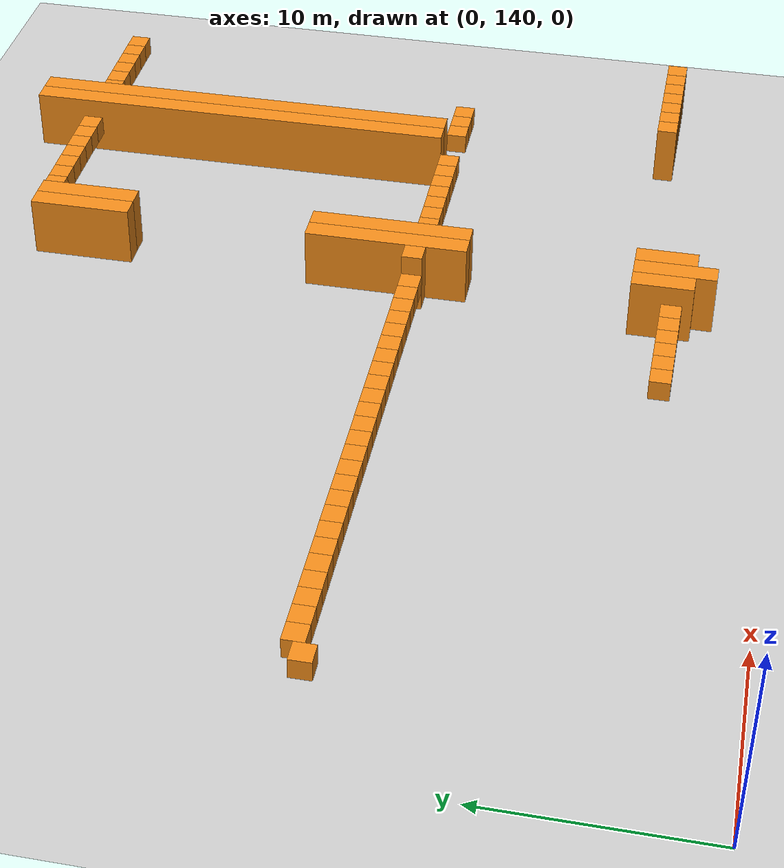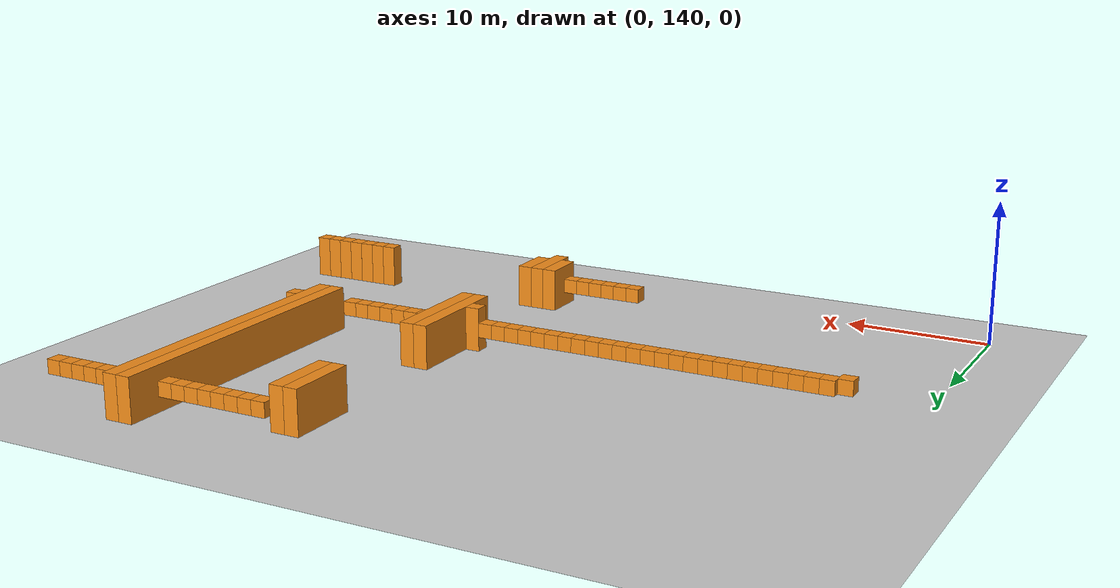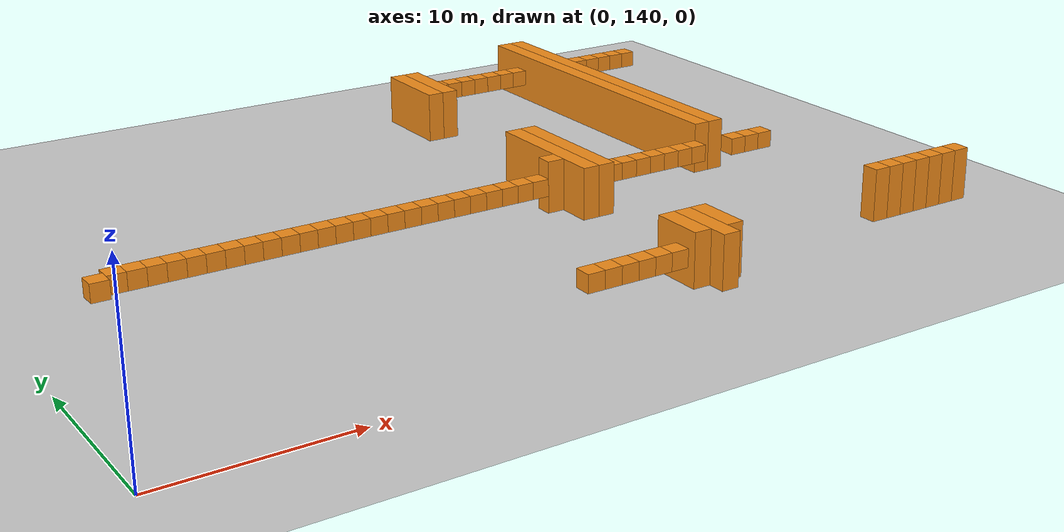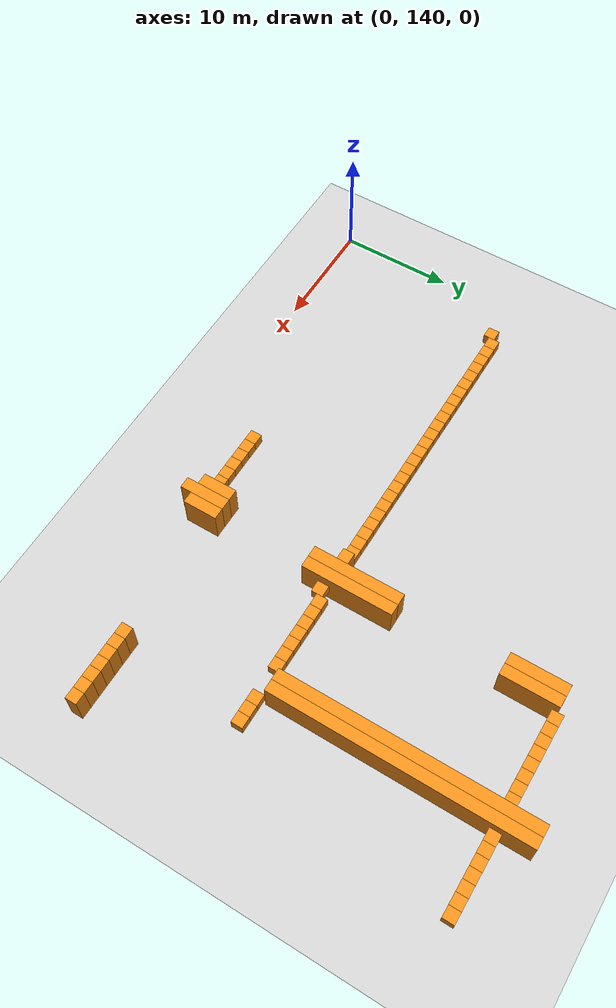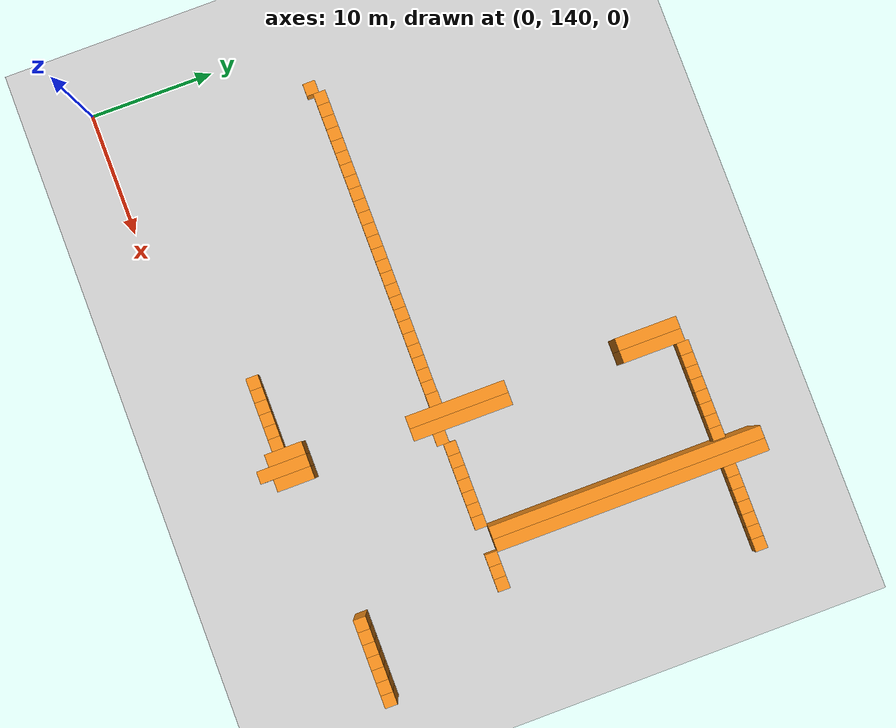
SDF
<sdf version="1.6">
 <world name="default">
  <include><uri>model://ground_plane</uri></include>
  <model name="unit_box_013">
   <pose>4.50   157.00     1.50 0 0 0</pose>
   <static>1</static>
   <link name="link">
    <inertial>
     <mass>5000</mass>
     <inertia><ixx>200</ixx><ixy>0</ixy><ixz>0</ixz><iyy>200</iyy><iyz>0</iyz><izz>200</izz></inertia>
    </inertial>
    <collision name="collision"><geometry><box><size>1 1 1</size></box></geometry></collision>
    <visual name="visual">
     <geometry><box><size>1 1 1</size></box></geometry>
     <material>
      <script><name>Gazebo/Orange</name><uri>file://media/materials/scripts/gazebo.material</uri></script>
     </material>
    </visual>
   </link>
  </model>
  <model name="unit_box_026">
   <pose>5.50   157.50     1.50 0 0 0</pose>
   <static>1</static>
   <link name="link">
    <inertial>
     <mass>5000</mass>
     <inertia><ixx>200</ixx><ixy>0</ixy><ixz>0</ixz><iyy>200</iyy><iyz>0</iyz><izz>200</izz></inertia>
    </inertial>
    <collision name="collision"><geometry><box><size>1 1 1</size></box></geometry></collision>
    <visual name="visual">
     <geometry><box><size>1 1 1</size></box></geometry>
     <material>
      <script><name>Gazebo/Orange</name><uri>file://media/materials/scripts/gazebo.material</uri></script>
     </material>
    </visual>
   </link>
  </model>
  <model name="unit_box_039">
   <pose>6.50   157.50     1.50 0 0 0</pose>
   <static>1</static>
   <link name="link">
    <inertial>
     <mass>5000</mass>
     <inertia><ixx>200</ixx><ixy>0</ixy><ixz>0</ixz><iyy>200</iyy><iyz>0</iyz><izz>200</izz></inertia>
    </inertial>
    <collision name="collision"><geometry><box><size>1 1 1</size></box></geometry></collision>
    <visual name="visual">
     <geometry><box><size>1 1 1</size></box></geometry>
     <material>
      <script><name>Gazebo/Orange</name><uri>file://media/materials/scripts/gazebo.material</uri></script>
     </material>
    </visual>
   </link>
  </model>
  <model name="unit_box_052">
   <pose>7.50   157.50     1.50 0 0 0</pose>
   <static>1</static>
   <link name="link">
    <inertial>
     <mass>5000</mass>
     <inertia><ixx>200</ixx><ixy>0</ixy><ixz>0</ixz><iyy>200</iyy><iyz>0</iyz><izz>200</izz></inertia>
    </inertial>
    <collision name="collision"><geometry><box><size>1 1 1</size></box></geometry></collision>
    <visual name="visual">
     <geometry><box><size>1 1 1</size></box></geometry>
     <material>
      <script><name>Gazebo/Orange</name><uri>file://media/materials/scripts/gazebo.material</uri></script>
     </material>
    </visual>
   </link>
  </model>
  <model name="unit_box_065">
   <pose>8.50   157.50     1.50 0 0 0</pose>
   <static>1</static>
   <link name="link">
    <inertial>
     <mass>5000</mass>
     <inertia><ixx>200</ixx><ixy>0</ixy><ixz>0</ixz><iyy>200</iyy><iyz>0</iyz><izz>200</izz></inertia>
    </inertial>
    <collision name="collision"><geometry><box><size>1 1 1</size></box></geometry></collision>
    <visual name="visual">
     <geometry><box><size>1 1 1</size></box></geometry>
     <material>
      <script><name>Gazebo/Orange</name><uri>file://media/materials/scripts/gazebo.material</uri></script>
     </material>
    </visual>
   </link>
  </model>
  <model name="unit_box_078">
   <pose>9.50   157.50     1.50 0 0 0</pose>
   <static>1</static>
   <link name="link">
    <inertial>
     <mass>5000</mass>
     <inertia><ixx>200</ixx><ixy>0</ixy><ixz>0</ixz><iyy>200</iyy><iyz>0</iyz><izz>200</izz></inertia>
    </inertial>
    <collision name="collision"><geometry><box><size>1 1 1</size></box></geometry></collision>
    <visual name="visual">
     <geometry><box><size>1 1 1</size></box></geometry>
     <material>
      <script><name>Gazebo/Orange</name><uri>file://media/materials/scripts/gazebo.material</uri></script>
     </material>
    </visual>
   </link>
  </model>
  <model name="unit_box_091">
   <pose>10.50   157.50     1.50 0 0 0</pose>
   <static>1</static>
   <link name="link">
    <inertial>
     <mass>5000</mass>
     <inertia><ixx>200</ixx><ixy>0</ixy><ixz>0</ixz><iyy>200</iyy><iyz>0</iyz><izz>200</izz></inertia>
    </inertial>
    <collision name="collision"><geometry><box><size>1 1 1</size></box></geometry></collision>
    <visual name="visual">
     <geometry><box><size>1 1 1</size></box></geometry>
     <material>
      <script><name>Gazebo/Orange</name><uri>file://media/materials/scripts/gazebo.material</uri></script>
     </material>
    </visual>
   </link>
  </model>
  <model name="unit_box_104">
   <pose>11.50   157.50     1.50 0 0 0</pose>
   <static>1</static>
   <link name="link">
    <inertial>
     <mass>5000</mass>
     <inertia><ixx>200</ixx><ixy>0</ixy><ixz>0</ixz><iyy>200</iyy><iyz>0</iyz><izz>200</izz></inertia>
    </inertial>
    <collision name="collision"><geometry><box><size>1 1 1</size></box></geometry></collision>
    <visual name="visual">
     <geometry><box><size>1 1 1</size></box></geometry>
     <material>
      <script><name>Gazebo/Orange</name><uri>file://media/materials/scripts/gazebo.material</uri></script>
     </material>
    </visual>
   </link>
  </model>
  <model name="unit_box_117">
   <pose>12.50   157.50     1.50 0 0 0</pose>
   <static>1</static>
   <link name="link">
    <inertial>
     <mass>5000</mass>
     <inertia><ixx>200</ixx><ixy>0</ixy><ixz>0</ixz><iyy>200</iyy><iyz>0</iyz><izz>200</izz></inertia>
    </inertial>
    <collision name="collision"><geometry><box><size>1 1 1</size></box></geometry></collision>
    <visual name="visual">
     <geometry><box><size>1 1 1</size></box></geometry>
     <material>
      <script><name>Gazebo/Orange</name><uri>file://media/materials/scripts/gazebo.material</uri></script>
     </material>
    </visual>
   </link>
  </model>
  <model name="unit_box_130">
   <pose>13.50   157.50     1.50 0 0 0</pose>
   <static>1</static>
   <link name="link">
    <inertial>
     <mass>5000</mass>
     <inertia><ixx>200</ixx><ixy>0</ixy><ixz>0</ixz><iyy>200</iyy><iyz>0</iyz><izz>200</izz></inertia>
    </inertial>
    <collision name="collision"><geometry><box><size>1 1 1</size></box></geometry></collision>
    <visual name="visual">
     <geometry><box><size>1 1 1</size></box></geometry>
     <material>
      <script><name>Gazebo/Orange</name><uri>file://media/materials/scripts/gazebo.material</uri></script>
     </material>
    </visual>
   </link>
  </model>
  <model name="unit_box_143">
   <pose>14.50   157.50     1.50 0 0 0</pose>
   <static>1</static>
   <link name="link">
    <inertial>
     <mass>5000</mass>
     <inertia><ixx>200</ixx><ixy>0</ixy><ixz>0</ixz><iyy>200</iyy><iyz>0</iyz><izz>200</izz></inertia>
    </inertial>
    <collision name="collision"><geometry><box><size>1 1 1</size></box></geometry></collision>
    <visual name="visual">
     <geometry><box><size>1 1 1</size></box></geometry>
     <material>
      <script><name>Gazebo/Orange</name><uri>file://media/materials/scripts/gazebo.material</uri></script>
     </material>
    </visual>
   </link>
  </model>
  <model name="unit_box_156">
   <pose>15.50   157.50     1.50 0 0 0</pose>
   <static>1</static>
   <link name="link">
    <inertial>
     <mass>5000</mass>
     <inertia><ixx>200</ixx><ixy>0</ixy><ixz>0</ixz><iyy>200</iyy><iyz>0</iyz><izz>200</izz></inertia>
    </inertial>
    <collision name="collision"><geometry><box><size>1 1 1</size></box></geometry></collision>
    <visual name="visual">
     <geometry><box><size>1 1 1</size></box></geometry>
     <material>
      <script><name>Gazebo/Orange</name><uri>file://media/materials/scripts/gazebo.material</uri></script>
     </material>
    </visual>
   </link>
  </model>
  <model name="unit_box_169">
   <pose>16.50   157.50     1.50 0 0 0</pose>
   <static>1</static>
   <link name="link">
    <inertial>
     <mass>5000</mass>
     <inertia><ixx>200</ixx><ixy>0</ixy><ixz>0</ixz><iyy>200</iyy><iyz>0</iyz><izz>200</izz></inertia>
    </inertial>
    <collision name="collision"><geometry><box><size>1 1 1</size></box></geometry></collision>
    <visual name="visual">
     <geometry><box><size>1 1 1</size></box></geometry>
     <material>
      <script><name>Gazebo/Orange</name><uri>file://media/materials/scripts/gazebo.material</uri></script>
     </material>
    </visual>
   </link>
  </model>
  <model name="unit_box_182">
   <pose>17.50   157.50     1.50 0 0 0</pose>
   <static>1</static>
   <link name="link">
    <inertial>
     <mass>5000</mass>
     <inertia><ixx>200</ixx><ixy>0</ixy><ixz>0</ixz><iyy>200</iyy><iyz>0</iyz><izz>200</izz></inertia>
    </inertial>
    <collision name="collision"><geometry><box><size>1 1 1</size></box></geometry></collision>
    <visual name="visual">
     <geometry><box><size>1 1 1</size></box></geometry>
     <material>
      <script><name>Gazebo/Orange</name><uri>file://media/materials/scripts/gazebo.material</uri></script>
     </material>
    </visual>
   </link>
  </model>
  <model name="unit_box_195">
   <pose>18.50   157.50     1.50 0 0 0</pose>
   <static>1</static>
   <link name="link">
    <inertial>
     <mass>5000</mass>
     <inertia><ixx>200</ixx><ixy>0</ixy><ixz>0</ixz><iyy>200</iyy><iyz>0</iyz><izz>200</izz></inertia>
    </inertial>
    <collision name="collision"><geometry><box><size>1 1 1</size></box></geometry></collision>
    <visual name="visual">
     <geometry><box><size>1 1 1</size></box></geometry>
     <material>
      <script><name>Gazebo/Orange</name><uri>file://media/materials/scripts/gazebo.material</uri></script>
     </material>
    </visual>
   </link>
  </model>
  <model name="unit_box_208">
   <pose>19.50   157.50     1.50 0 0 0</pose>
   <static>1</static>
   <link name="link">
    <inertial>
     <mass>5000</mass>
     <inertia><ixx>200</ixx><ixy>0</ixy><ixz>0</ixz><iyy>200</iyy><iyz>0</iyz><izz>200</izz></inertia>
    </inertial>
    <collision name="collision"><geometry><box><size>1 1 1</size></box></geometry></collision>
    <visual name="visual">
     <geometry><box><size>1 1 1</size></box></geometry>
     <material>
      <script><name>Gazebo/Orange</name><uri>file://media/materials/scripts/gazebo.material</uri></script>
     </material>
    </visual>
   </link>
  </model>
  <model name="unit_box_221">
   <pose>20.50   157.50     1.50 0 0 0</pose>
   <static>1</static>
   <link name="link">
    <inertial>
     <mass>5000</mass>
     <inertia><ixx>200</ixx><ixy>0</ixy><ixz>0</ixz><iyy>200</iyy><iyz>0</iyz><izz>200</izz></inertia>
    </inertial>
    <collision name="collision"><geometry><box><size>1 1 1</size></box></geometry></collision>
    <visual name="visual">
     <geometry><box><size>1 1 1</size></box></geometry>
     <material>
      <script><name>Gazebo/Orange</name><uri>file://media/materials/scripts/gazebo.material</uri></script>
     </material>
    </visual>
   </link>
  </model>
  <model name="unit_box_234">
   <pose>21.50   157.50     1.50 0 0 0</pose>
   <static>1</static>
   <link name="link">
    <inertial>
     <mass>5000</mass>
     <inertia><ixx>200</ixx><ixy>0</ixy><ixz>0</ixz><iyy>200</iyy><iyz>0</iyz><izz>200</izz></inertia>
    </inertial>
    <collision name="collision"><geometry><box><size>1 1 1</size></box></geometry></collision>
    <visual name="visual">
     <geometry><box><size>1 1 1</size></box></geometry>
     <material>
      <script><name>Gazebo/Orange</name><uri>file://media/materials/scripts/gazebo.material</uri></script>
     </material>
    </visual>
   </link>
  </model>
  <model name="unit_box_247">
   <pose>22.50   157.50     1.50 0 0 0</pose>
   <static>1</static>
   <link name="link">
    <inertial>
     <mass>5000</mass>
     <inertia><ixx>200</ixx><ixy>0</ixy><ixz>0</ixz><iyy>200</iyy><iyz>0</iyz><izz>200</izz></inertia>
    </inertial>
    <collision name="collision"><geometry><box><size>1 1 1</size></box></geometry></collision>
    <visual name="visual">
     <geometry><box><size>1 1 1</size></box></geometry>
     <material>
      <script><name>Gazebo/Orange</name><uri>file://media/materials/scripts/gazebo.material</uri></script>
     </material>
    </visual>
   </link>
  </model>
  <model name="unit_box_260">
   <pose>23.50   157.50     1.50 0 0 0</pose>
   <static>1</static>
   <link name="link">
    <inertial>
     <mass>5000</mass>
     <inertia><ixx>200</ixx><ixy>0</ixy><ixz>0</ixz><iyy>200</iyy><iyz>0</iyz><izz>200</izz></inertia>
    </inertial>
    <collision name="collision"><geometry><box><size>1 1 1</size></box></geometry></collision>
    <visual name="visual">
     <geometry><box><size>1 1 1</size></box></geometry>
     <material>
      <script><name>Gazebo/Orange</name><uri>file://media/materials/scripts/gazebo.material</uri></script>
     </material>
    </visual>
   </link>
  </model>
  <model name="unit_box_272">
   <pose>24.50   145.00     1.50 0 0 0</pose>
   <static>1</static>
   <link name="link">
    <inertial>
     <mass>5000</mass>
     <inertia><ixx>200</ixx><ixy>0</ixy><ixz>0</ixz><iyy>200</iyy><iyz>0</iyz><izz>200</izz></inertia>
    </inertial>
    <collision name="collision"><geometry><box><size>1 1 1</size></box></geometry></collision>
    <visual name="visual">
     <geometry><box><size>1 1 1</size></box></geometry>
     <material>
      <script><name>Gazebo/Orange</name><uri>file://media/materials/scripts/gazebo.material</uri></script>
     </material>
    </visual>
   </link>
  </model>
  <model name="unit_box_273">
   <pose>24.50   157.50     1.50 0 0 0</pose>
   <static>1</static>
   <link name="link">
    <inertial>
     <mass>5000</mass>
     <inertia><ixx>200</ixx><ixy>0</ixy><ixz>0</ixz><iyy>200</iyy><iyz>0</iyz><izz>200</izz></inertia>
    </inertial>
    <collision name="collision"><geometry><box><size>1 1 1</size></box></geometry></collision>
    <visual name="visual">
     <geometry><box><size>1 1 1</size></box></geometry>
     <material>
      <script><name>Gazebo/Orange</name><uri>file://media/materials/scripts/gazebo.material</uri></script>
     </material>
    </visual>
   </link>
  </model>
  <model name="unit_box_285">
   <pose>25.50   145.00     1.50 0 0 0</pose>
   <static>1</static>
   <link name="link">
    <inertial>
     <mass>5000</mass>
     <inertia><ixx>200</ixx><ixy>0</ixy><ixz>0</ixz><iyy>200</iyy><iyz>0</iyz><izz>200</izz></inertia>
    </inertial>
    <collision name="collision"><geometry><box><size>1 1 1</size></box></geometry></collision>
    <visual name="visual">
     <geometry><box><size>1 1 1</size></box></geometry>
     <material>
      <script><name>Gazebo/Orange</name><uri>file://media/materials/scripts/gazebo.material</uri></script>
     </material>
    </visual>
   </link>
  </model>
  <model name="unit_box_286">
   <pose>25.50   157.50     1.50 0 0 0</pose>
   <static>1</static>
   <link name="link">
    <inertial>
     <mass>5000</mass>
     <inertia><ixx>200</ixx><ixy>0</ixy><ixz>0</ixz><iyy>200</iyy><iyz>0</iyz><izz>200</izz></inertia>
    </inertial>
    <collision name="collision"><geometry><box><size>1 1 1</size></box></geometry></collision>
    <visual name="visual">
     <geometry><box><size>1 1 1</size></box></geometry>
     <material>
      <script><name>Gazebo/Orange</name><uri>file://media/materials/scripts/gazebo.material</uri></script>
     </material>
    </visual>
   </link>
  </model>
  <model name="unit_box_298">
   <pose>26.50   145.00     1.50 0 0 0</pose>
   <static>1</static>
   <link name="link">
    <inertial>
     <mass>5000</mass>
     <inertia><ixx>200</ixx><ixy>0</ixy><ixz>0</ixz><iyy>200</iyy><iyz>0</iyz><izz>200</izz></inertia>
    </inertial>
    <collision name="collision"><geometry><box><size>1 1 1</size></box></geometry></collision>
    <visual name="visual">
     <geometry><box><size>1 1 1</size></box></geometry>
     <material>
      <script><name>Gazebo/Orange</name><uri>file://media/materials/scripts/gazebo.material</uri></script>
     </material>
    </visual>
   </link>
  </model>
  <model name="unit_box_299">
   <pose>26.50   157.50     1.50 0 0 0</pose>
   <static>1</static>
   <link name="link">
    <inertial>
     <mass>5000</mass>
     <inertia><ixx>200</ixx><ixy>0</ixy><ixz>0</ixz><iyy>200</iyy><iyz>0</iyz><izz>200</izz></inertia>
    </inertial>
    <collision name="collision"><geometry><box><size>1 1 1</size></box></geometry></collision>
    <visual name="visual">
     <geometry><box><size>1 1 1</size></box></geometry>
     <material>
      <script><name>Gazebo/Orange</name><uri>file://media/materials/scripts/gazebo.material</uri></script>
     </material>
    </visual>
   </link>
  </model>
  <model name="unit_box_311">
   <pose>27.50   145.00     1.50 0 0 0</pose>
   <static>1</static>
   <link name="link">
    <inertial>
     <mass>5000</mass>
     <inertia><ixx>200</ixx><ixy>0</ixy><ixz>0</ixz><iyy>200</iyy><iyz>0</iyz><izz>200</izz></inertia>
    </inertial>
    <collision name="collision"><geometry><box><size>1 1 1</size></box></geometry></collision>
    <visual name="visual">
     <geometry><box><size>1 1 1</size></box></geometry>
     <material>
      <script><name>Gazebo/Orange</name><uri>file://media/materials/scripts/gazebo.material</uri></script>
     </material>
    </visual>
   </link>
  </model>
  <model name="unit_box_312">
   <pose>27.50   157.50     1.50 0 0 0</pose>
   <static>1</static>
   <link name="link">
    <inertial>
     <mass>5000</mass>
     <inertia><ixx>200</ixx><ixy>0</ixy><ixz>0</ixz><iyy>200</iyy><iyz>0</iyz><izz>200</izz></inertia>
    </inertial>
    <collision name="collision"><geometry><box><size>1 1 1</size></box></geometry></collision>
    <visual name="visual">
     <geometry><box><size>1 1 1</size></box></geometry>
     <material>
      <script><name>Gazebo/Orange</name><uri>file://media/materials/scripts/gazebo.material</uri></script>
     </material>
    </visual>
   </link>
  </model>
  <model name="unit_box_324">
   <pose>28.50   145.00     1.50 0 0 0</pose>
   <static>1</static>
   <link name="link">
    <inertial>
     <mass>5000</mass>
     <inertia><ixx>200</ixx><ixy>0</ixy><ixz>0</ixz><iyy>200</iyy><iyz>0</iyz><izz>200</izz></inertia>
    </inertial>
    <collision name="collision"><geometry><box><size>1 1 1</size></box></geometry></collision>
    <visual name="visual">
     <geometry><box><size>1 1 1</size></box></geometry>
     <material>
      <script><name>Gazebo/Orange</name><uri>file://media/materials/scripts/gazebo.material</uri></script>
     </material>
    </visual>
   </link>
  </model>
  <model name="unit_box_325">
   <pose>28.50   157.50     1.50 0 0 0</pose>
   <static>1</static>
   <link name="link">
    <inertial>
     <mass>5000</mass>
     <inertia><ixx>200</ixx><ixy>0</ixy><ixz>0</ixz><iyy>200</iyy><iyz>0</iyz><izz>200</izz></inertia>
    </inertial>
    <collision name="collision"><geometry><box><size>1 1 1</size></box></geometry></collision>
    <visual name="visual">
     <geometry><box><size>1 1 1</size></box></geometry>
     <material>
      <script><name>Gazebo/Orange</name><uri>file://media/materials/scripts/gazebo.material</uri></script>
     </material>
    </visual>
   </link>
  </model>
  <model name="unit_box_337">
   <pose>29.50   145.00     1.50 0 0 0</pose>
   <static>1</static>
   <link name="link">
    <inertial>
     <mass>5000</mass>
     <inertia><ixx>200</ixx><ixy>0</ixy><ixz>0</ixz><iyy>200</iyy><iyz>0</iyz><izz>200</izz></inertia>
    </inertial>
    <collision name="collision"><geometry><box><size>1 1 1</size></box></geometry></collision>
    <visual name="visual">
     <geometry><box><size>1 1 1</size></box></geometry>
     <material>
      <script><name>Gazebo/Orange</name><uri>file://media/materials/scripts/gazebo.material</uri></script>
     </material>
    </visual>
   </link>
  </model>
  <model name="unit_box_338">
   <pose>29.50   157.50     1.50 0 0 0</pose>
   <static>1</static>
   <link name="link">
    <inertial>
     <mass>5000</mass>
     <inertia><ixx>200</ixx><ixy>0</ixy><ixz>0</ixz><iyy>200</iyy><iyz>0</iyz><izz>200</izz></inertia>
    </inertial>
    <collision name="collision"><geometry><box><size>1 1 1</size></box></geometry></collision>
    <visual name="visual">
     <geometry><box><size>1 1 1</size></box></geometry>
     <material>
      <script><name>Gazebo/Orange</name><uri>file://media/materials/scripts/gazebo.material</uri></script>
     </material>
    </visual>
   </link>
  </model>
  <model name="unit_box_350">
   <pose>30.50   145.50     1.50 0 0 0</pose>
   <static>1</static>
   <link name="link">
    <inertial>
     <mass>5000</mass>
     <inertia><ixx>200</ixx><ixy>0</ixy><ixz>0</ixz><iyy>200</iyy><iyz>0</iyz><izz>200</izz></inertia>
    </inertial>
    <collision name="collision"><geometry><box><size>1 3 3</size></box></geometry></collision>
    <visual name="visual">
     <geometry><box><size>1 3 3</size></box></geometry>
     <material>
      <script><name>Gazebo/Orange</name><uri>file://media/materials/scripts/gazebo.material</uri></script>
     </material>
    </visual>
   </link>
  </model>
  <model name="unit_box_351">
   <pose>30.50   157.50     1.50 0 0 0</pose>
   <static>1</static>
   <link name="link">
    <inertial>
     <mass>5000</mass>
     <inertia><ixx>200</ixx><ixy>0</ixy><ixz>0</ixz><iyy>200</iyy><iyz>0</iyz><izz>200</izz></inertia>
    </inertial>
    <collision name="collision"><geometry><box><size>1 1 3</size></box></geometry></collision>
    <visual name="visual">
     <geometry><box><size>1 1 3</size></box></geometry>
     <material>
      <script><name>Gazebo/Orange</name><uri>file://media/materials/scripts/gazebo.material</uri></script>
     </material>
    </visual>
   </link>
  </model>
  <model name="unit_box_363">
   <pose>31.50   145.00     1.50 0 0 0</pose>
   <static>1</static>
   <link name="link">
    <inertial>
     <mass>5000</mass>
     <inertia><ixx>200</ixx><ixy>0</ixy><ixz>0</ixz><iyy>200</iyy><iyz>0</iyz><izz>200</izz></inertia>
    </inertial>
    <collision name="collision"><geometry><box><size>1 4 3</size></box></geometry></collision>
    <visual name="visual">
     <geometry><box><size>1 4 3</size></box></geometry>
     <material>
      <script><name>Gazebo/Orange</name><uri>file://media/materials/scripts/gazebo.material</uri></script>
     </material>
    </visual>
   </link>
  </model>
  <model name="unit_box_364">
   <pose>31.50   159.00     1.50 0 0 0</pose>
   <static>1</static>
   <link name="link">
    <inertial>
     <mass>5000</mass>
     <inertia><ixx>200</ixx><ixy>0</ixy><ixz>0</ixz><iyy>200</iyy><iyz>0</iyz><izz>200</izz></inertia>
    </inertial>
    <collision name="collision"><geometry><box><size>1 8 3</size></box></geometry></collision>
    <visual name="visual">
     <geometry><box><size>1 8 3</size></box></geometry>
     <material>
      <script><name>Gazebo/Orange</name><uri>file://media/materials/scripts/gazebo.material</uri></script>
     </material>
    </visual>
   </link>
  </model>
  <model name="unit_box_365">
   <pose>31.50   174.50     1.50 0 0 0</pose>
   <static>1</static>
   <link name="link">
    <inertial>
     <mass>5000</mass>
     <inertia><ixx>200</ixx><ixy>0</ixy><ixz>0</ixz><iyy>200</iyy><iyz>0</iyz><izz>200</izz></inertia>
    </inertial>
    <collision name="collision"><geometry><box><size>1 5 3</size></box></geometry></collision>
    <visual name="visual">
     <geometry><box><size>1 5 3</size></box></geometry>
     <material>
      <script><name>Gazebo/Orange</name><uri>file://media/materials/scripts/gazebo.material</uri></script>
     </material>
    </visual>
   </link>
  </model>
  <model name="unit_box_377">
   <pose>32.50   145.50     1.50 0 0 0</pose>
   <static>1</static>
   <link name="link">
    <inertial>
     <mass>5000</mass>
     <inertia><ixx>200</ixx><ixy>0</ixy><ixz>0</ixz><iyy>200</iyy><iyz>0</iyz><izz>200</izz></inertia>
    </inertial>
    <collision name="collision"><geometry><box><size>1 3 3</size></box></geometry></collision>
    <visual name="visual">
     <geometry><box><size>1 3 3</size></box></geometry>
     <material>
      <script><name>Gazebo/Orange</name><uri>file://media/materials/scripts/gazebo.material</uri></script>
     </material>
    </visual>
   </link>
  </model>
  <model name="unit_box_378">
   <pose>32.50   159.00     1.50 0 0 0</pose>
   <static>1</static>
   <link name="link">
    <inertial>
     <mass>5000</mass>
     <inertia><ixx>200</ixx><ixy>0</ixy><ixz>0</ixz><iyy>200</iyy><iyz>0</iyz><izz>200</izz></inertia>
    </inertial>
    <collision name="collision"><geometry><box><size>1 8 3</size></box></geometry></collision>
    <visual name="visual">
     <geometry><box><size>1 8 3</size></box></geometry>
     <material>
      <script><name>Gazebo/Orange</name><uri>file://media/materials/scripts/gazebo.material</uri></script>
     </material>
    </visual>
   </link>
  </model>
  <model name="unit_box_379">
   <pose>32.50   174.50     1.50 0 0 0</pose>
   <static>1</static>
   <link name="link">
    <inertial>
     <mass>5000</mass>
     <inertia><ixx>200</ixx><ixy>0</ixy><ixz>0</ixz><iyy>200</iyy><iyz>0</iyz><izz>200</izz></inertia>
    </inertial>
    <collision name="collision"><geometry><box><size>1 5 3</size></box></geometry></collision>
    <visual name="visual">
     <geometry><box><size>1 5 3</size></box></geometry>
     <material>
      <script><name>Gazebo/Orange</name><uri>file://media/materials/scripts/gazebo.material</uri></script>
     </material>
    </visual>
   </link>
  </model>
  <model name="unit_box_383">
   <pose>33.50   157.00     1.50 0 0 0</pose>
   <static>1</static>
   <link name="link">
    <inertial>
     <mass>5000</mass>
     <inertia><ixx>200</ixx><ixy>0</ixy><ixz>0</ixz><iyy>200</iyy><iyz>0</iyz><izz>200</izz></inertia>
    </inertial>
    <collision name="collision"><geometry><box><size>1 1 1</size></box></geometry></collision>
    <visual name="visual">
     <geometry><box><size>1 1 1</size></box></geometry>
     <material>
      <script><name>Gazebo/Orange</name><uri>file://media/materials/scripts/gazebo.material</uri></script>
     </material>
    </visual>
   </link>
  </model>
  <model name="unit_box_384">
   <pose>33.50   177.00     1.50 0 0 0</pose>
   <static>1</static>
   <link name="link">
    <inertial>
     <mass>5000</mass>
     <inertia><ixx>200</ixx><ixy>0</ixy><ixz>0</ixz><iyy>200</iyy><iyz>0</iyz><izz>200</izz></inertia>
    </inertial>
    <collision name="collision"><geometry><box><size>1 1 1</size></box></geometry></collision>
    <visual name="visual">
     <geometry><box><size>1 1 1</size></box></geometry>
     <material>
      <script><name>Gazebo/Orange</name><uri>file://media/materials/scripts/gazebo.material</uri></script>
     </material>
    </visual>
   </link>
  </model>
  <model name="unit_box_390">
   <pose>34.50   157.50     1.50 0 0 0</pose>
   <static>1</static>
   <link name="link">
    <inertial>
     <mass>5000</mass>
     <inertia><ixx>200</ixx><ixy>0</ixy><ixz>0</ixz><iyy>200</iyy><iyz>0</iyz><izz>200</izz></inertia>
    </inertial>
    <collision name="collision"><geometry><box><size>1 1 1</size></box></geometry></collision>
    <visual name="visual">
     <geometry><box><size>1 1 1</size></box></geometry>
     <material>
      <script><name>Gazebo/Orange</name><uri>file://media/materials/scripts/gazebo.material</uri></script>
     </material>
    </visual>
   </link>
  </model>
  <model name="unit_box_391">
   <pose>34.50   177.00     1.50 0 0 0</pose>
   <static>1</static>
   <link name="link">
    <inertial>
     <mass>5000</mass>
     <inertia><ixx>200</ixx><ixy>0</ixy><ixz>0</ixz><iyy>200</iyy><iyz>0</iyz><izz>200</izz></inertia>
    </inertial>
    <collision name="collision"><geometry><box><size>1 1 1</size></box></geometry></collision>
    <visual name="visual">
     <geometry><box><size>1 1 1</size></box></geometry>
     <material>
      <script><name>Gazebo/Orange</name><uri>file://media/materials/scripts/gazebo.material</uri></script>
     </material>
    </visual>
   </link>
  </model>
  <model name="unit_box_396">
   <pose>35.50   157.50     1.50 0 0 0</pose>
   <static>1</static>
   <link name="link">
    <inertial>
     <mass>5000</mass>
     <inertia><ixx>200</ixx><ixy>0</ixy><ixz>0</ixz><iyy>200</iyy><iyz>0</iyz><izz>200</izz></inertia>
    </inertial>
    <collision name="collision"><geometry><box><size>1 1 1</size></box></geometry></collision>
    <visual name="visual">
     <geometry><box><size>1 1 1</size></box></geometry>
     <material>
      <script><name>Gazebo/Orange</name><uri>file://media/materials/scripts/gazebo.material</uri></script>
     </material>
    </visual>
   </link>
  </model>
  <model name="unit_box_397">
   <pose>35.50   177.00     1.50 0 0 0</pose>
   <static>1</static>
   <link name="link">
    <inertial>
     <mass>5000</mass>
     <inertia><ixx>200</ixx><ixy>0</ixy><ixz>0</ixz><iyy>200</iyy><iyz>0</iyz><izz>200</izz></inertia>
    </inertial>
    <collision name="collision"><geometry><box><size>1 1 1</size></box></geometry></collision>
    <visual name="visual">
     <geometry><box><size>1 1 1</size></box></geometry>
     <material>
      <script><name>Gazebo/Orange</name><uri>file://media/materials/scripts/gazebo.material</uri></script>
     </material>
    </visual>
   </link>
  </model>
  <model name="unit_box_402">
   <pose>36.50   157.50     1.50 0 0 0</pose>
   <static>1</static>
   <link name="link">
    <inertial>
     <mass>5000</mass>
     <inertia><ixx>200</ixx><ixy>0</ixy><ixz>0</ixz><iyy>200</iyy><iyz>0</iyz><izz>200</izz></inertia>
    </inertial>
    <collision name="collision"><geometry><box><size>1 1 1</size></box></geometry></collision>
    <visual name="visual">
     <geometry><box><size>1 1 1</size></box></geometry>
     <material>
      <script><name>Gazebo/Orange</name><uri>file://media/materials/scripts/gazebo.material</uri></script>
     </material>
    </visual>
   </link>
  </model>
  <model name="unit_box_403">
   <pose>36.50   177.00     1.50 0 0 0</pose>
   <static>1</static>
   <link name="link">
    <inertial>
     <mass>5000</mass>
     <inertia><ixx>200</ixx><ixy>0</ixy><ixz>0</ixz><iyy>200</iyy><iyz>0</iyz><izz>200</izz></inertia>
    </inertial>
    <collision name="collision"><geometry><box><size>1 1 1</size></box></geometry></collision>
    <visual name="visual">
     <geometry><box><size>1 1 1</size></box></geometry>
     <material>
      <script><name>Gazebo/Orange</name><uri>file://media/materials/scripts/gazebo.material</uri></script>
     </material>
    </visual>
   </link>
  </model>
  <model name="unit_box_407">
   <pose>37.50   157.50     1.50 0 0 0</pose>
   <static>1</static>
   <link name="link">
    <inertial>
     <mass>5000</mass>
     <inertia><ixx>200</ixx><ixy>0</ixy><ixz>0</ixz><iyy>200</iyy><iyz>0</iyz><izz>200</izz></inertia>
    </inertial>
    <collision name="collision"><geometry><box><size>1 1 1</size></box></geometry></collision>
    <visual name="visual">
     <geometry><box><size>1 1 1</size></box></geometry>
     <material>
      <script><name>Gazebo/Orange</name><uri>file://media/materials/scripts/gazebo.material</uri></script>
     </material>
    </visual>
   </link>
  </model>
  <model name="unit_box_408">
   <pose>37.50   177.00     1.50 0 0 0</pose>
   <static>1</static>
   <link name="link">
    <inertial>
     <mass>5000</mass>
     <inertia><ixx>200</ixx><ixy>0</ixy><ixz>0</ixz><iyy>200</iyy><iyz>0</iyz><izz>200</izz></inertia>
    </inertial>
    <collision name="collision"><geometry><box><size>1 1 1</size></box></geometry></collision>
    <visual name="visual">
     <geometry><box><size>1 1 1</size></box></geometry>
     <material>
      <script><name>Gazebo/Orange</name><uri>file://media/materials/scripts/gazebo.material</uri></script>
     </material>
    </visual>
   </link>
  </model>
  <model name="unit_box_412">
   <pose>38.50   157.50     1.50 0 0 0</pose>
   <static>1</static>
   <link name="link">
    <inertial>
     <mass>5000</mass>
     <inertia><ixx>200</ixx><ixy>0</ixy><ixz>0</ixz><iyy>200</iyy><iyz>0</iyz><izz>200</izz></inertia>
    </inertial>
    <collision name="collision"><geometry><box><size>1 1 1</size></box></geometry></collision>
    <visual name="visual">
     <geometry><box><size>1 1 1</size></box></geometry>
     <material>
      <script><name>Gazebo/Orange</name><uri>file://media/materials/scripts/gazebo.material</uri></script>
     </material>
    </visual>
   </link>
  </model>
  <model name="unit_box_413">
   <pose>38.50   177.00     1.50 0 0 0</pose>
   <static>1</static>
   <link name="link">
    <inertial>
     <mass>5000</mass>
     <inertia><ixx>200</ixx><ixy>0</ixy><ixz>0</ixz><iyy>200</iyy><iyz>0</iyz><izz>200</izz></inertia>
    </inertial>
    <collision name="collision"><geometry><box><size>1 1 1</size></box></geometry></collision>
    <visual name="visual">
     <geometry><box><size>1 1 1</size></box></geometry>
     <material>
      <script><name>Gazebo/Orange</name><uri>file://media/materials/scripts/gazebo.material</uri></script>
     </material>
    </visual>
   </link>
  </model>
  <model name="unit_box_417">
   <pose>39.50   157.50     1.50 0 0 0</pose>
   <static>1</static>
   <link name="link">
    <inertial>
     <mass>5000</mass>
     <inertia><ixx>200</ixx><ixy>0</ixy><ixz>0</ixz><iyy>200</iyy><iyz>0</iyz><izz>200</izz></inertia>
    </inertial>
    <collision name="collision"><geometry><box><size>1 1 1</size></box></geometry></collision>
    <visual name="visual">
     <geometry><box><size>1 1 1</size></box></geometry>
     <material>
      <script><name>Gazebo/Orange</name><uri>file://media/materials/scripts/gazebo.material</uri></script>
     </material>
    </visual>
   </link>
  </model>
  <model name="unit_box_418">
   <pose>39.50   177.00     1.50 0 0 0</pose>
   <static>1</static>
   <link name="link">
    <inertial>
     <mass>5000</mass>
     <inertia><ixx>200</ixx><ixy>0</ixy><ixz>0</ixz><iyy>200</iyy><iyz>0</iyz><izz>200</izz></inertia>
    </inertial>
    <collision name="collision"><geometry><box><size>1 1 1</size></box></geometry></collision>
    <visual name="visual">
     <geometry><box><size>1 1 1</size></box></geometry>
     <material>
      <script><name>Gazebo/Orange</name><uri>file://media/materials/scripts/gazebo.material</uri></script>
     </material>
    </visual>
   </link>
  </model>
  <model name="unit_box_423">
   <pose>40.50   157.50     1.50 0 0 0</pose>
   <static>1</static>
   <link name="link">
    <inertial>
     <mass>5000</mass>
     <inertia><ixx>200</ixx><ixy>0</ixy><ixz>0</ixz><iyy>200</iyy><iyz>0</iyz><izz>200</izz></inertia>
    </inertial>
    <collision name="collision"><geometry><box><size>1 1 1</size></box></geometry></collision>
    <visual name="visual">
     <geometry><box><size>1 1 1</size></box></geometry>
     <material>
      <script><name>Gazebo/Orange</name><uri>file://media/materials/scripts/gazebo.material</uri></script>
     </material>
    </visual>
   </link>
  </model>
  <model name="unit_box_424">
   <pose>40.50   177.00     1.50 0 0 0</pose>
   <static>1</static>
   <link name="link">
    <inertial>
     <mass>5000</mass>
     <inertia><ixx>200</ixx><ixy>0</ixy><ixz>0</ixz><iyy>200</iyy><iyz>0</iyz><izz>200</izz></inertia>
    </inertial>
    <collision name="collision"><geometry><box><size>1 1 1</size></box></geometry></collision>
    <visual name="visual">
     <geometry><box><size>1 1 1</size></box></geometry>
     <material>
      <script><name>Gazebo/Orange</name><uri>file://media/materials/scripts/gazebo.material</uri></script>
     </material>
    </visual>
   </link>
  </model>
  <model name="unit_box_432">
   <pose>41.50   169.00     1.50 0 0 0</pose>
   <static>1</static>
   <link name="link">
    <inertial>
     <mass>5000</mass>
     <inertia><ixx>200</ixx><ixy>0</ixy><ixz>0</ixz><iyy>200</iyy><iyz>0</iyz><izz>200</izz></inertia>
    </inertial>
    <collision name="collision"><geometry><box><size>1 22 3</size></box></geometry></collision>
    <visual name="visual">
     <geometry><box><size>1 22 3</size></box></geometry>
     <material>
      <script><name>Gazebo/Orange</name><uri>file://media/materials/scripts/gazebo.material</uri></script>
     </material>
    </visual>
   </link>
  </model>
  <model name="unit_box_443">
   <pose>42.50   169.00     1.50 0 0 0</pose>
   <static>1</static>
   <link name="link">
    <inertial>
     <mass>5000</mass>
     <inertia><ixx>200</ixx><ixy>0</ixy><ixz>0</ixz><iyy>200</iyy><iyz>0</iyz><izz>200</izz></inertia>
    </inertial>
    <collision name="collision"><geometry><box><size>1 22 3</size></box></geometry></collision>
    <visual name="visual">
     <geometry><box><size>1 22 3</size></box></geometry>
     <material>
      <script><name>Gazebo/Orange</name><uri>file://media/materials/scripts/gazebo.material</uri></script>
     </material>
    </visual>
   </link>
  </model>
  <model name="unit_box_457">
   <pose>43.50   157.50     1.50 0 0 0</pose>
   <static>1</static>
   <link name="link">
    <inertial>
     <mass>5000</mass>
     <inertia><ixx>200</ixx><ixy>0</ixy><ixz>0</ixz><iyy>200</iyy><iyz>0</iyz><izz>200</izz></inertia>
    </inertial>
    <collision name="collision"><geometry><box><size>1 1 1</size></box></geometry></collision>
    <visual name="visual">
     <geometry><box><size>1 1 1</size></box></geometry>
     <material>
      <script><name>Gazebo/Orange</name><uri>file://media/materials/scripts/gazebo.material</uri></script>
     </material>
    </visual>
   </link>
  </model>
  <model name="unit_box_458">
   <pose>43.50   177.00     1.50 0 0 0</pose>
   <static>1</static>
   <link name="link">
    <inertial>
     <mass>5000</mass>
     <inertia><ixx>200</ixx><ixy>0</ixy><ixz>0</ixz><iyy>200</iyy><iyz>0</iyz><izz>200</izz></inertia>
    </inertial>
    <collision name="collision"><geometry><box><size>1 1 1</size></box></geometry></collision>
    <visual name="visual">
     <geometry><box><size>1 1 1</size></box></geometry>
     <material>
      <script><name>Gazebo/Orange</name><uri>file://media/materials/scripts/gazebo.material</uri></script>
     </material>
    </visual>
   </link>
  </model>
  <model name="unit_box_471">
   <pose>44.50   146.50     1.50 0 0 0</pose>
   <static>1</static>
   <link name="link">
    <inertial>
     <mass>5000</mass>
     <inertia><ixx>200</ixx><ixy>0</ixy><ixz>0</ixz><iyy>200</iyy><iyz>0</iyz><izz>200</izz></inertia>
    </inertial>
    <collision name="collision"><geometry><box><size>1 1 3</size></box></geometry></collision>
    <visual name="visual">
     <geometry><box><size>1 1 3</size></box></geometry>
     <material>
      <script><name>Gazebo/Orange</name><uri>file://media/materials/scripts/gazebo.material</uri></script>
     </material>
    </visual>
   </link>
  </model>
  <model name="unit_box_472">
   <pose>44.50   157.50     1.50 0 0 0</pose>
   <static>1</static>
   <link name="link">
    <inertial>
     <mass>5000</mass>
     <inertia><ixx>200</ixx><ixy>0</ixy><ixz>0</ixz><iyy>200</iyy><iyz>0</iyz><izz>200</izz></inertia>
    </inertial>
    <collision name="collision"><geometry><box><size>1 1 1</size></box></geometry></collision>
    <visual name="visual">
     <geometry><box><size>1 1 1</size></box></geometry>
     <material>
      <script><name>Gazebo/Orange</name><uri>file://media/materials/scripts/gazebo.material</uri></script>
     </material>
    </visual>
   </link>
  </model>
  <model name="unit_box_473">
   <pose>44.50   177.00     1.50 0 0 0</pose>
   <static>1</static>
   <link name="link">
    <inertial>
     <mass>5000</mass>
     <inertia><ixx>200</ixx><ixy>0</ixy><ixz>0</ixz><iyy>200</iyy><iyz>0</iyz><izz>200</izz></inertia>
    </inertial>
    <collision name="collision"><geometry><box><size>1 1 1</size></box></geometry></collision>
    <visual name="visual">
     <geometry><box><size>1 1 1</size></box></geometry>
     <material>
      <script><name>Gazebo/Orange</name><uri>file://media/materials/scripts/gazebo.material</uri></script>
     </material>
    </visual>
   </link>
  </model>
  <model name="unit_box_486">
   <pose>45.50   146.50     1.50 0 0 0</pose>
   <static>1</static>
   <link name="link">
    <inertial>
     <mass>5000</mass>
     <inertia><ixx>200</ixx><ixy>0</ixy><ixz>0</ixz><iyy>200</iyy><iyz>0</iyz><izz>200</izz></inertia>
    </inertial>
    <collision name="collision"><geometry><box><size>1 1 3</size></box></geometry></collision>
    <visual name="visual">
     <geometry><box><size>1 1 3</size></box></geometry>
     <material>
      <script><name>Gazebo/Orange</name><uri>file://media/materials/scripts/gazebo.material</uri></script>
     </material>
    </visual>
   </link>
  </model>
  <model name="unit_box_487">
   <pose>45.50   157.50     1.50 0 0 0</pose>
   <static>1</static>
   <link name="link">
    <inertial>
     <mass>5000</mass>
     <inertia><ixx>200</ixx><ixy>0</ixy><ixz>0</ixz><iyy>200</iyy><iyz>0</iyz><izz>200</izz></inertia>
    </inertial>
    <collision name="collision"><geometry><box><size>1 1 1</size></box></geometry></collision>
    <visual name="visual">
     <geometry><box><size>1 1 1</size></box></geometry>
     <material>
      <script><name>Gazebo/Orange</name><uri>file://media/materials/scripts/gazebo.material</uri></script>
     </material>
    </visual>
   </link>
  </model>
  <model name="unit_box_488">
   <pose>45.50   177.00     1.50 0 0 0</pose>
   <static>1</static>
   <link name="link">
    <inertial>
     <mass>5000</mass>
     <inertia><ixx>200</ixx><ixy>0</ixy><ixz>0</ixz><iyy>200</iyy><iyz>0</iyz><izz>200</izz></inertia>
    </inertial>
    <collision name="collision"><geometry><box><size>1 1 1</size></box></geometry></collision>
    <visual name="visual">
     <geometry><box><size>1 1 1</size></box></geometry>
     <material>
      <script><name>Gazebo/Orange</name><uri>file://media/materials/scripts/gazebo.material</uri></script>
     </material>
    </visual>
   </link>
  </model>
  <model name="unit_box_501">
   <pose>46.50   146.50     1.50 0 0 0</pose>
   <static>1</static>
   <link name="link">
    <inertial>
     <mass>5000</mass>
     <inertia><ixx>200</ixx><ixy>0</ixy><ixz>0</ixz><iyy>200</iyy><iyz>0</iyz><izz>200</izz></inertia>
    </inertial>
    <collision name="collision"><geometry><box><size>1 1 3</size></box></geometry></collision>
    <visual name="visual">
     <geometry><box><size>1 1 3</size></box></geometry>
     <material>
      <script><name>Gazebo/Orange</name><uri>file://media/materials/scripts/gazebo.material</uri></script>
     </material>
    </visual>
   </link>
  </model>
  <model name="unit_box_502">
   <pose>46.50   177.00     1.50 0 0 0</pose>
   <static>1</static>
   <link name="link">
    <inertial>
     <mass>5000</mass>
     <inertia><ixx>200</ixx><ixy>0</ixy><ixz>0</ixz><iyy>200</iyy><iyz>0</iyz><izz>200</izz></inertia>
    </inertial>
    <collision name="collision"><geometry><box><size>1 1 1</size></box></geometry></collision>
    <visual name="visual">
     <geometry><box><size>1 1 1</size></box></geometry>
     <material>
      <script><name>Gazebo/Orange</name><uri>file://media/materials/scripts/gazebo.material</uri></script>
     </material>
    </visual>
   </link>
  </model>
  <model name="unit_box_514">
   <pose>47.50   146.50     1.50 0 0 0</pose>
   <static>1</static>
   <link name="link">
    <inertial>
     <mass>5000</mass>
     <inertia><ixx>200</ixx><ixy>0</ixy><ixz>0</ixz><iyy>200</iyy><iyz>0</iyz><izz>200</izz></inertia>
    </inertial>
    <collision name="collision"><geometry><box><size>1 1 3</size></box></geometry></collision>
    <visual name="visual">
     <geometry><box><size>1 1 3</size></box></geometry>
     <material>
      <script><name>Gazebo/Orange</name><uri>file://media/materials/scripts/gazebo.material</uri></script>
     </material>
    </visual>
   </link>
  </model>
  <model name="unit_box_515">
   <pose>47.50   177.00     1.50 0 0 0</pose>
   <static>1</static>
   <link name="link">
    <inertial>
     <mass>5000</mass>
     <inertia><ixx>200</ixx><ixy>0</ixy><ixz>0</ixz><iyy>200</iyy><iyz>0</iyz><izz>200</izz></inertia>
    </inertial>
    <collision name="collision"><geometry><box><size>1 1 1</size></box></geometry></collision>
    <visual name="visual">
     <geometry><box><size>1 1 1</size></box></geometry>
     <material>
      <script><name>Gazebo/Orange</name><uri>file://media/materials/scripts/gazebo.material</uri></script>
     </material>
    </visual>
   </link>
  </model>
  <model name="unit_box_527">
   <pose>48.50   146.50     1.50 0 0 0</pose>
   <static>1</static>
   <link name="link">
    <inertial>
     <mass>5000</mass>
     <inertia><ixx>200</ixx><ixy>0</ixy><ixz>0</ixz><iyy>200</iyy><iyz>0</iyz><izz>200</izz></inertia>
    </inertial>
    <collision name="collision"><geometry><box><size>1 1 3</size></box></geometry></collision>
    <visual name="visual">
     <geometry><box><size>1 1 3</size></box></geometry>
     <material>
      <script><name>Gazebo/Orange</name><uri>file://media/materials/scripts/gazebo.material</uri></script>
     </material>
    </visual>
   </link>
  </model>
  <model name="unit_box_528">
   <pose>48.50   177.00     1.50 0 0 0</pose>
   <static>1</static>
   <link name="link">
    <inertial>
     <mass>5000</mass>
     <inertia><ixx>200</ixx><ixy>0</ixy><ixz>0</ixz><iyy>200</iyy><iyz>0</iyz><izz>200</izz></inertia>
    </inertial>
    <collision name="collision"><geometry><box><size>1 1 1</size></box></geometry></collision>
    <visual name="visual">
     <geometry><box><size>1 1 1</size></box></geometry>
     <material>
      <script><name>Gazebo/Orange</name><uri>file://media/materials/scripts/gazebo.material</uri></script>
     </material>
    </visual>
   </link>
  </model>
  <model name="unit_box_540">
   <pose>49.50   146.50     1.50 0 0 0</pose>
   <static>1</static>
   <link name="link">
    <inertial>
     <mass>5000</mass>
     <inertia><ixx>200</ixx><ixy>0</ixy><ixz>0</ixz><iyy>200</iyy><iyz>0</iyz><izz>200</izz></inertia>
    </inertial>
    <collision name="collision"><geometry><box><size>1 1 3</size></box></geometry></collision>
    <visual name="visual">
     <geometry><box><size>1 1 3</size></box></geometry>
     <material>
      <script><name>Gazebo/Orange</name><uri>file://media/materials/scripts/gazebo.material</uri></script>
     </material>
    </visual>
   </link>
  </model>
  <model name="unit_box_541">
   <pose>49.50   177.00     1.50 0 0 0</pose>
   <static>1</static>
   <link name="link">
    <inertial>
     <mass>5000</mass>
     <inertia><ixx>200</ixx><ixy>0</ixy><ixz>0</ixz><iyy>200</iyy><iyz>0</iyz><izz>200</izz></inertia>
    </inertial>
    <collision name="collision"><geometry><box><size>1 1 1</size></box></geometry></collision>
    <visual name="visual">
     <geometry><box><size>1 1 1</size></box></geometry>
     <material>
      <script><name>Gazebo/Orange</name><uri>file://media/materials/scripts/gazebo.material</uri></script>
     </material>
    </visual>
   </link>
  </model>
  <model name="unit_box_555">
   <pose>50.50   146.50     1.50 0 0 0</pose>
   <static>1</static>
   <link name="link">
    <inertial>
     <mass>5000</mass>
     <inertia><ixx>200</ixx><ixy>0</ixy><ixz>0</ixz><iyy>200</iyy><iyz>0</iyz><izz>200</izz></inertia>
    </inertial>
    <collision name="collision"><geometry><box><size>1 1 3</size></box></geometry></collision>
    <visual name="visual">
     <geometry><box><size>1 1 3</size></box></geometry>
     <material>
      <script><name>Gazebo/Orange</name><uri>file://media/materials/scripts/gazebo.material</uri></script>
     </material>
    </visual>
   </link>
  </model>
 </world>
</sdf>
